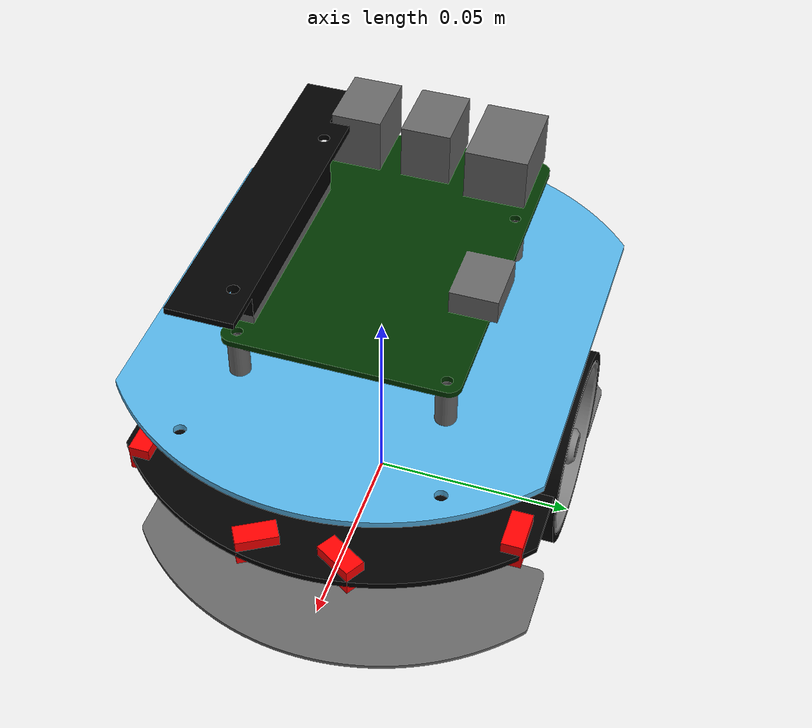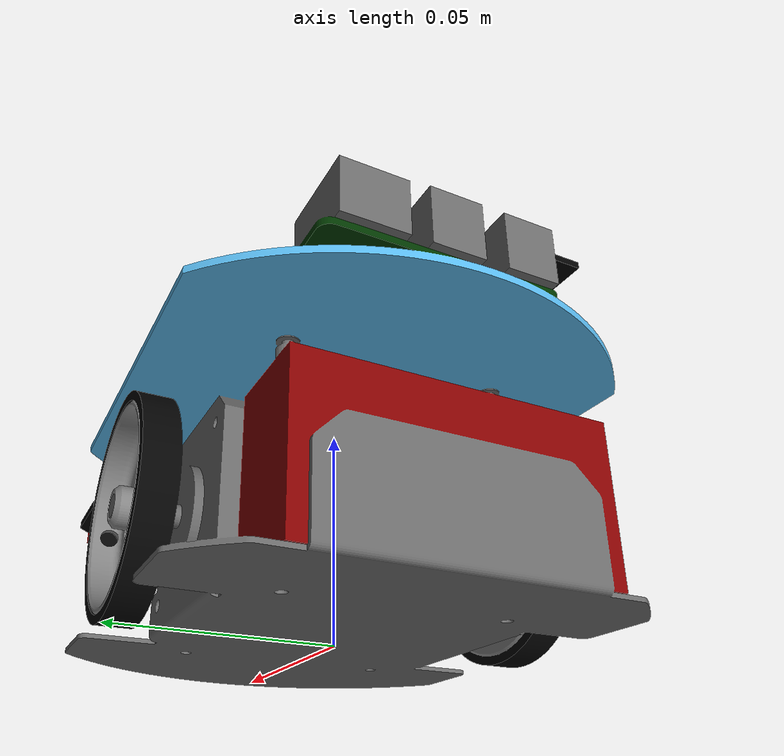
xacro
<?xml version="1.0"?>
<robot name="raspimouse_on_gazebo"
       xmlns:sensor="http://playerstage.sourceforge.net/gazebo/xmlschema/#sensor"
       xmlns:controller="http://playerstage.sourceforge.net/gazebo/xmlschema/#controller"
       xmlns:interface="http://playerstage.sourceforge.net/gazebo/xmlschema/#interface"
       xmlns:xacro="http://ros.org/wiki/xacro">

  <xacro:arg name="lidar" default="none" />
  <xacro:arg name="lidar_frame" default="laser" />
  <xacro:arg name="gazebo_plugin" default="false" />
  <xacro:arg name="tf" default="true" />
  <xacro:arg name="jointstate" default="true" />
  <xacro:arg name="robot_namespace" default="/" />
  <xacro:arg name="sensor_namespace" default="raspimouse_on_gazebo" />
  <xacro:arg name="use_gazebo" default="false" />
  <xacro:arg name="use_rgb_camera" default="false" />
  <xacro:arg name="camera_downward" default="false" />
  <xacro:arg name="gz_control_config_package" default="" />
  <xacro:arg name="gz_control_config_file_path" default="" />

  <material name="black">
    <color rgba="0.2 0.2 0.2 1.0"/>
  </material>

  <xacro:include filename="$(find raspimouse_description)/urdf/common.xacro" />
  <xacro:include filename="$(find raspimouse_description)/urdf/body/body.urdf.xacro" />
  <xacro:include filename="$(find raspimouse_description)/urdf/body/option.urdf.xacro" />
  <xacro:include filename="$(find raspimouse_description)/urdf/wheel/wheel.urdf.xacro" />
  <xacro:include filename="$(find raspimouse_description)/urdf/wheel/diffdrive.gazebo.xacro" />
  <xacro:include filename="$(find raspimouse_description)/urdf/wheel/diffdrive.gazebo_ros2_control.xacro" />
  <xacro:include filename="$(find raspimouse_description)/urdf/sensors/lightsens.urdf.xacro" />
  <xacro:include filename="$(find raspimouse_description)/urdf/sensors/lidar.urdf.xacro" />
  <xacro:include filename="$(find raspimouse_description)/urdf/sensors/rgb_camera.xacro" />

  <!-- =============== Link & Joint =============== -->
  <!-- Base -->
  <link name="base_footprint" />

  <xacro:base parent="base_footprint">
    <origin xyz="0 0 0.00185" />
  </xacro:base>

  <!-- Wheel -->
  <xacro:wheel prefix="right" parent="base_link">
    <origin xyz="0 -0.0425 0.02215" rpy="1.57 0 0" />
    <axis xyz="0 0 -1" />
  </xacro:wheel>
  <xacro:wheel prefix="left" parent="base_link">
    <origin xyz="0 0.0425 0.02215" rpy="-1.57 0 0" />
    <axis xyz="0 0 1" />
  </xacro:wheel>

  <!-- Sensors -->
  <link name="lightsensors" />
  <joint name="lightsensors_joint" type="fixed">
    <parent link="base_link" />
    <child link="lightsensors" />
  </joint>

  <xacro:light_sensor prefix="rf" parent="lightsensors">
    <origin xyz="0.04 -0.045 0.032" rpy="0 0 0" />
  </xacro:light_sensor>

  <xacro:light_sensor prefix="rs" parent="lightsensors">
    <origin xyz="0.059 -0.01 0.032" rpy="0 0 -1.04" />
  </xacro:light_sensor>

  <xacro:light_sensor prefix="ls" parent="lightsensors">
    <origin xyz="0.059 0.01 0.032" rpy="0 0 1.04" />
  </xacro:light_sensor>

  <xacro:light_sensor prefix="lf" parent="lightsensors">
    <origin xyz="0.04 0.045 0.032" rpy="0 0 0" />
  </xacro:light_sensor>

  <xacro:if value="${'$(arg lidar)' == 'urg'}">
    <xacro:lidar_urg_mount prefix="urg_mount" parent="base_link">
      <origin xyz="0 0 0" rpy="0 0 0" />
    </xacro:lidar_urg_mount>
    <xacro:lidar_urg_sensor sensor_link_name="$(arg lidar_frame)" parent="urg_mount_link">
      <origin xyz="0.0 0.0 0.14060" rpy="0 0 0" />
    </xacro:lidar_urg_sensor>
  </xacro:if>

  <xacro:if value="${'$(arg lidar)' == 'lds'}">
    <xacro:lidar_multi_mount prefix="lds_multi_mount" parent="base_link">
      <origin xyz="0 0 0.0855" rpy="0 0 0" />
    </xacro:lidar_multi_mount>
    <xacro:lidar_lds_sensor sensor_link_name="$(arg lidar_frame)" parent="$(arg lidar)_multi_mount_link">
      <origin xyz="0.0 0.0 0.0345" rpy="0 0 3.14" />
    </xacro:lidar_lds_sensor>
  </xacro:if>

  <xacro:if value="${'$(arg lidar)' == 'rplidar'}">
    <xacro:lidar_multi_mount prefix="rplidar_multi_mount" parent="base_link">
      <origin xyz="0 0 0.0855" rpy="0 0 0" />
    </xacro:lidar_multi_mount>
    <xacro:lidar_rp_sensor sensor_link_name="$(arg lidar_frame)" parent="$(arg lidar)_multi_mount_link">
      <origin xyz="0.0 0.0 0.0445" rpy="0 0 3.14"/> <!-- The LIDAR is about 13cm from the ground-->
    </xacro:lidar_rp_sensor>
  </xacro:if>

  <!-- =============== Gazebo =============== -->
  <xacro:rgb_camera_settings
    use_gazebo="$(arg use_gazebo)"
    use_rgb_camera="$(arg use_rgb_camera)"
    camera_downward="$(arg camera_downward)" />

  <xacro:if value="$(arg use_gazebo)">
    <xacro:gazebo_diffdrive_settings
      use_gazebo="$(arg use_gazebo)"
      config_file_package="$(arg gz_control_config_package)"
      config_file_path="$(arg gz_control_config_file_path)" />

    <xacro:diffdrive_gazebo_ros2_control_settings
      name_hardware="GazeboSystem"
      name_right_wheel_joint="right_wheel_joint"
      name_left_wheel_joint="left_wheel_joint" />
  </xacro:if>

  <xacro:if value="$(arg gazebo_plugin)">
    <gazebo>
      <plugin name="gazebo_ros_control" filename="libgazebo_ros_control.so">
        <robotNamespace>$(arg robot_namespace)</robotNamespace>
      </plugin>
    </gazebo>

    <!-- Sensors -->
    <xacro:lightsensor_gazebo prefix="rf" base_rad="0"
      rad_range="0.3" min_range="0.01" max_range="0.6"
      robot_namespace="$(arg sensor_namespace)"
      robotdescription_namespace="$(arg robot_namespace)" />
    <xacro:lightsensor_gazebo prefix="rs" base_rad="-1.04"
      rad_range="0.3" min_range="0.01" max_range="0.6"
      robot_namespace="$(arg sensor_namespace)"
      robotdescription_namespace="$(arg robot_namespace)" />
    <xacro:lightsensor_gazebo prefix="ls" base_rad="1.04"
      rad_range="0.3" min_range="0.01" max_range="0.6"
      robot_namespace="$(arg sensor_namespace)"
      robotdescription_namespace="$(arg robot_namespace)" />
    <xacro:lightsensor_gazebo prefix="lf" base_rad="0"
      rad_range="0.3" min_range="0.01" max_range="0.6"
      robot_namespace="$(arg sensor_namespace)"
      robotdescription_namespace="$(arg robot_namespace)" />

  </xacro:if>

  <xacro:if value="$(arg use_gazebo)">

    <xacro:if value="${'$(arg lidar)' == 'urg'}">
      <xacro:lidar_gazebo sensor_link_name="$(arg lidar_frame)" base_rad="0" rad_range="4.71" min_range="0.10" max_range="5.6" />
    </xacro:if>

    <xacro:if value="${'$(arg lidar)' == 'lds'}">
      <xacro:lidar_gazebo sensor_link_name="$(arg lidar_frame)" base_rad="0" rad_range="6.28" min_range="0.12" max_range="3.50" />
    </xacro:if>

    <xacro:if value="${'$(arg lidar)' == 'rplidar'}">
      <xacro:lidar_gazebo sensor_link_name="$(arg lidar_frame)" base_rad="0" rad_range="6.28" min_range="0.15" max_range="12" />
    </xacro:if>

  </xacro:if>

  <raspimouse_on_gazebo/>
</robot>

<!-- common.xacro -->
<robot name="common" xmlns:xacro="http://ros.org/wiki/xacro">

  <xacro:property name="wheel_radius" value="0.024" />
  <xacro:property name="wheel_length" value="0.010" />
  <xacro:property name="wheel_mass" value="0.0113" />
  <xacro:property name="wheel_separation" value="0.0925" />

  <!-- PROPERTY LIST -->
  <!-- All units in m-kg-s-radians unit system -->
  <xacro:property name="M_PI" value="3.1415926535897932" />
  <xacro:property name="WHEEL_VELOCITY_LIMIT" value="90" />

  <!-- Inertial macros. Units are kg*m^2 -->
  <xacro:macro name="box_inertia" params="m x y z">
    <inertia ixx="${m*(y*y+z*z)/12}" ixy = "0" ixz = "0"
             iyy="${m*(z*z+x*x)/12}" iyz = "0"
             izz="${m*(x*x+y*y)/12}" />
  </xacro:macro>
  <xacro:macro name="cylinder_inertia" params="m r h">
    <inertia ixx="${m*(3*r*r+h*h)/12}" ixy="0" ixz="0"
             iyy="${m*(3*r*r+h*h)/12}" iyz="0"
             izz="${m*r*r/2}" />
  </xacro:macro>
  <xacro:macro name="sphere_inertia" params="m r">
    <inertia ixx="${m*r*r*2/5}" ixy="0" ixz="0"
             iyy="${m*r*r*2/5}" iyz="0"
             izz="${m*r*r*2/5}" />
  </xacro:macro>

</robot>

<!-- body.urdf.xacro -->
<robot xmlns:xacro="http://ros.org/wiki/xacro">

  <xacro:include filename="$(find raspimouse_description)/urdf/body/body.gazebo.xacro" />

  <xacro:macro name="base" params="parent *joint_origin">
    <joint name="base_joint" type="fixed">
      <xacro:insert_block name="joint_origin" />
      <parent link="${parent}" />
      <child link="base_link" />
    </joint>
    <link name="base_link">
      <visual>
        <geometry>
          <mesh filename="package://raspimouse_description/meshes/dae/body/raspimouse_body.dae" />
        </geometry>
      </visual>
      <collision>
        <origin rpy="0 0 0" xyz="0.005 0 0.040" />
        <geometry>
          <box size="0.117 0.080 0.080" />
        </geometry>
      </collision>
      <inertial>
        <origin xyz="-0.005075 0.0 0.03" />
        <mass value="0.7186" />
        <xacro:box_inertia m="0.7" x="0.1" y="0.08" z="0.08" />
      </inertial>
    </link>
  </xacro:macro>
</robot>

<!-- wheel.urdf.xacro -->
<robot xmlns:xacro="http://ros.org/wiki/xacro">

  <xacro:include filename="$(find raspimouse_description)/urdf/common.xacro" />

  <xacro:macro name="wheel" params="prefix parent *joint_origin *joint_axis">
  <joint name="${prefix}_wheel_joint" type="continuous">
    <xacro:insert_block name="joint_origin"/>
    <xacro:insert_block name="joint_axis"/>
    <parent link="${parent}"/>
    <child link="${prefix}_wheel"/>
    <limit effort="70" velocity="${WHEEL_VELOCITY_LIMIT}"/>
    <safety_controller  k_velocity="10" />
    <dynamics damping="1.0" friction="1.0" />
  </joint>
  <link name="${prefix}_wheel">
    <visual>
      <geometry>
        <mesh filename="package://raspimouse_description/meshes/dae/wheel/raspimouse_wheel.dae"/>
      </geometry>
    </visual>
    <collision>
      <origin xyz="0 0 0.003" />
        <geometry>
          <cylinder radius="${wheel_radius}" length="${wheel_length}" />
        </geometry>
        <surface>
          <friction>
            <ode>
              <mu>2</mu>
              <mu2>2</mu2>
              <slip1>0</slip1>
              <slip2>0</slip2>
            </ode>
          </friction>
        </surface>
      </collision>
      <inertial>
        <origin xyz="-0.000107 0 0.002875" />
        <mass value="${wheel_mass}" />
        <inertia ixx="0.000002208187" ixy="0.000000000001" iyy="0.00000218412" ixz="0.000000004787" iyz="0.000000000003" izz="0.000004078299" />
      </inertial>
    </link>
  </xacro:macro>
</robot>

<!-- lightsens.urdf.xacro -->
<robot name="light_sensor" xmlns:xacro="http://ros.org/wiki/xacro">

  <xacro:include filename="$(find raspimouse_description)/urdf/common.xacro" />
  <xacro:include filename="$(find raspimouse_description)/urdf/sensors/lightsens.gazebo.xacro" />

  <xacro:macro name="light_sensor" params="prefix parent *joint_origin">
    <joint name="${prefix}_joint" type="fixed">
      <xacro:insert_block name="joint_origin" />
      <parent link="${parent}" />
      <child link="${prefix}_lightsensor_link" />
    </joint>

    <link name="${prefix}_lightsensor_link">
      <visual>
        <geometry>
          <box size="0.01 0.005 0.007" />
        </geometry>
        <material name="Red">
          <color rgba="1.0 0.0 0.0 1" />
        </material>
      </visual>
      <inertial>
        <mass value="0.000001" />
        <origin xyz="0 0 0" />
        <inertia ixx="0.0001" ixy="0.0" ixz="0.0"
          iyy="0.0001" iyz="0.0"
          izz="0.0001" />
      </inertial>
    </link>
  </xacro:macro>
</robot>
